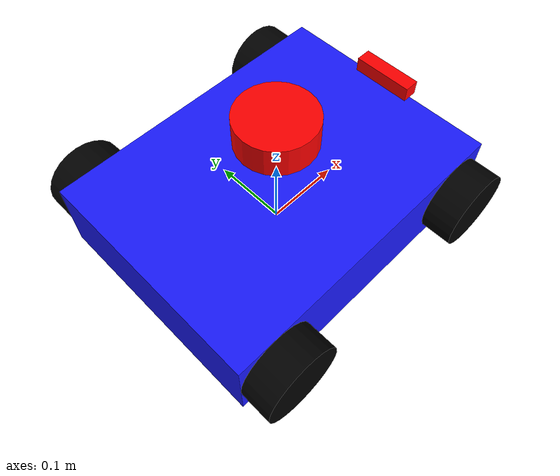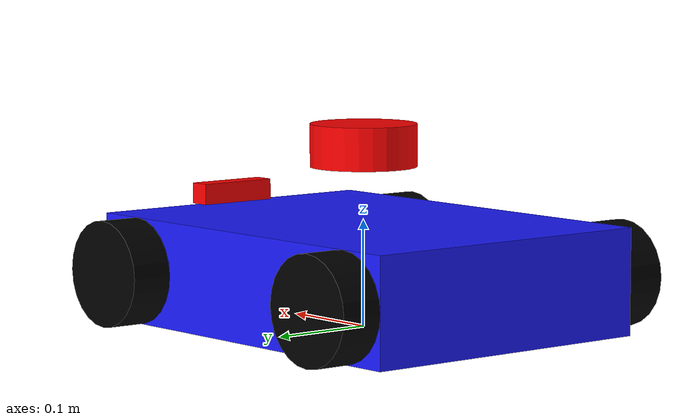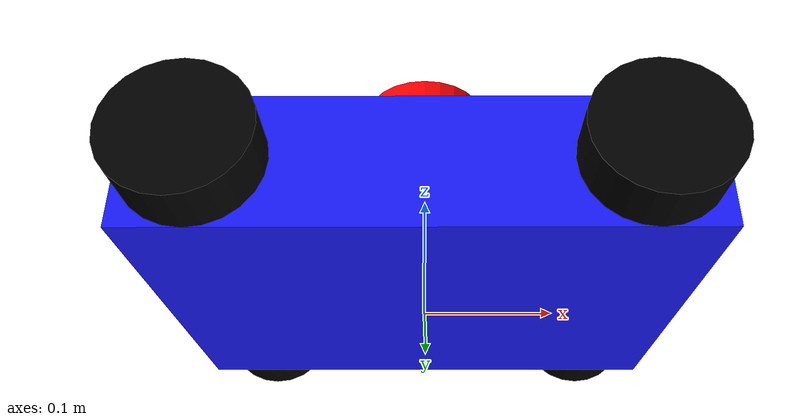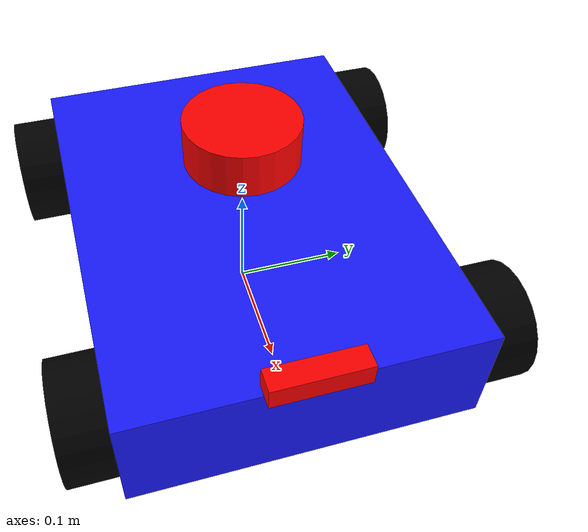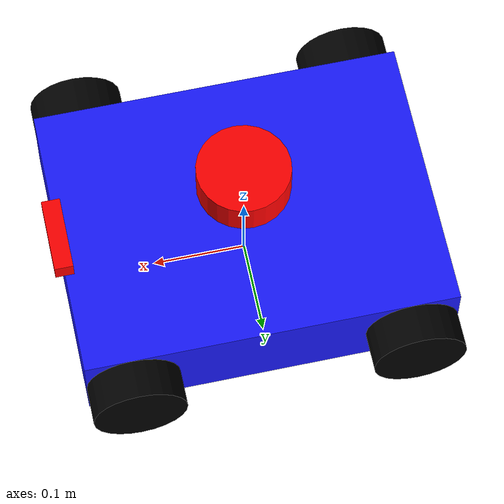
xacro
<?xml version="1.0"?>
<robot xmlns:xacro="http://www.ros.org/wiki/xacro" name="mi_robot_autonomo">

    <xacro:property name="radio_rueda" value="0.05"/>
    <xacro:property name="longitud_rueda" value="0.04"/>
    <xacro:property name="largo_chasis" value="0.4"/>
    <xacro:property name="ancho_chasis" value="0.3"/>
    <xacro:property name="alto_chasis" value="0.1"/>

    <xacro:property name="masa_chasis" value="1.0"/>
    <xacro:property name="masa_rueda" value="0.2"/>

    <xacro:macro name="inercia_caja" params="masa x y z">
        <inertial>
            <mass value="${masa}"/>
            <inertia ixx="${(1/12) * masa * (y*y + z*z)}" ixy="0.0" ixz="0.0"
                     iyy="${(1/12) * masa * (x*x + z*z)}" iyz="0.0"
                     izz="${(1/12) * masa * (x*x + y*y)}"/>
        </inertial>
    </xacro:macro>

    <xacro:macro name="inercia_cilindro" params="masa r h">
        <inertial>
            <mass value="${masa}"/>
            <inertia ixx="${(1/12) * masa * (3*r*r + h*h)}" ixy="0" ixz="0"
                     iyy="${(1/12) * masa * (3*r*r + h*h)}" iyz="0"
                     izz="${(1/2) * masa * (r*r)}"/>
        </inertial>
    </xacro:macro>

    <link name="base_footprint"/>

    <joint name="base_joint" type="fixed">
        <parent link="base_footprint"/>
        <child link="base_link"/>
        <origin xyz="0 0 ${radio_rueda}" rpy="0 0 0"/>
    </joint>

    <link name="base_link">
        <visual>
            <geometry>
                <box size="${largo_chasis} ${ancho_chasis} ${alto_chasis}"/>
            </geometry>
            <material name="azul">
                <color rgba="0.1 0.1 1 1"/> </material>
        </visual>

        <collision>
            <geometry>
                <box size="${largo_chasis} ${ancho_chasis} ${alto_chasis}"/>
            </geometry>
        </collision>

        <xacro:inercia_caja masa="${masa_chasis}" x="${largo_chasis}" y="${ancho_chasis}" z="${alto_chasis}"/>
    </link>

    <xacro:macro name="rueda" params="prefijo x_pos y_pos">
        <link name="${prefijo}_rueda">
            <visual>
                <geometry>
                    <cylinder radius="${radio_rueda}" length="${longitud_rueda}"/>
                </geometry>
                <material name="negro">
                    <color rgba="0 0 0 1"/>
                </material>
            </visual>

            <collision>
                <geometry>
                    <cylinder radius="${radio_rueda}" length="${longitud_rueda}"/>
                </geometry>
            </collision>

            <xacro:inercia_cilindro masa="${masa_rueda}" r="${radio_rueda}" h="${longitud_rueda}"/>
        </link>

        <joint name="${prefijo}_joint" type="continuous">
            <parent link="base_link"/>
            <child link="${prefijo}_rueda"/>
            <origin xyz="${x_pos} ${y_pos} 0" rpy="-1.5708 0 0"/>
            <axis xyz="0 0 1"/>
        </joint>
    </xacro:macro>

    <xacro:property name="wheel_offset_x" value="0.15"/>
    <xacro:property name="wheel_offset_y" value="0.17"/>

    <xacro:rueda prefijo="front_left"  x_pos="${wheel_offset_x}"  y_pos="${wheel_offset_y}"/>
    <xacro:rueda prefijo="front_right" x_pos="${wheel_offset_x}"  y_pos="-${wheel_offset_y}"/>
    <xacro:rueda prefijo="rear_left"   x_pos="-${wheel_offset_x}" y_pos="${wheel_offset_y}"/>
    <xacro:rueda prefijo="rear_right"  x_pos="-${wheel_offset_x}" y_pos="-${wheel_offset_y}"/>
<gazebo>
    <plugin name="diff_drive" filename="libgazebo_ros_diff_drive.so">
        <left_joint>front_left_joint</left_joint>
        <right_joint>front_right_joint</right_joint>

        <wheel_separation>0.35</wheel_separation>
        <wheel_diameter>0.1</wheel_diameter>

        <max_wheel_torque>200</max_wheel_torque>
        <max_wheel_acceleration>10.0</max_wheel_acceleration>

        <odometry_frame>odom</odometry_frame>
        <robot_base_frame>base_footprint</robot_base_frame>

        <publish_odom>true</publish_odom>
        <publish_odom_tf>true</publish_odom_tf>
        <publish_wheel_tf>true</publish_wheel_tf>
    </plugin>
</gazebo>
<gazebo reference="lidar_link">
        <sensor name="lidar" type="ray">
            <pose>0 0 0 0 0 0</pose>
            <visualize>true</visualize> <update_rate>10</update_rate>
            <ray>
                <scan>
                    <horizontal>
                        <samples>360</samples> <resolution>1</resolution>
                        <min_angle>-3.14</min_angle> <max_angle>3.14</max_angle>  </horizontal>
                </scan>
                <range>
                    <min>0.3</min>
                    <max>12</max> </range>
            </ray>
            <plugin name="laser_controller" filename="libgazebo_ros_ray_sensor.so">
                <ros>
                    <argument>~/out:=scan</argument>
                </ros>
                <output_type>sensor_msgs/LaserScan</output_type>
                <frame_name>lidar_link</frame_name>
            </plugin>
        </sensor>
    </gazebo>
<gazebo reference="camera_link">
        <sensor type="camera" name="camera_sensor">
            <update_rate>30.0</update_rate> <camera name="head">
                <horizontal_fov>1.3962634</horizontal_fov> <image>
                    <width>800</width>
                    <height>800</height>
                    <format>R8G8B8</format>
                </image>
                <clip>
                    <near>0.02</near>
                    <far>300</far>
                </clip>
            </camera>
            <plugin name="camera_controller" filename="libgazebo_ros_camera.so">
                <alwaysOn>true</alwaysOn>
                <updateRate>0.0</updateRate>
                <cameraName>camera</cameraName>
                <imageTopicName>image_raw</imageTopicName>
                <cameraInfoTopicName>camera_info</cameraInfoTopicName>
                <frameName>camera_link</frameName>
                <hackBaseline>0.07</hackBaseline>
            </plugin>
        </sensor>
    </gazebo>
<link name="lidar_link">
        <visual>
            <geometry>
                <cylinder radius="0.05" length="0.04"/>
            </geometry>
            <material name="rojo">
                <color rgba="1 0 0 1"/>
            </material>
        </visual>
        <collision>
            <geometry>
                <cylinder radius="0.05" length="0.04"/>
            </geometry>
        </collision>
        <xacro:inercia_cilindro masa="0.1" r="0.05" h="0.04"/>
    </link>

    <joint name="lidar_joint" type="fixed">
        <parent link="base_link"/>
        <child link="lidar_link"/>
        <origin xyz="0 0 ${alto_chasis + 0.02}" rpy="0 0 0"/>
    </joint>
<link name="camera_link">
        <visual>
            <geometry>
                <box size="0.02 0.08 0.02"/> </geometry>
            <material name="rojo"/>
        </visual>
        <collision>
            <geometry>
                <box size="0.02 0.08 0.02"/>
            </geometry>
        </collision>
        <xacro:inercia_caja masa="0.05" x="0.02" y="0.08" z="0.02"/>
    </link>

    <joint name="camera_joint" type="fixed">
        <parent link="base_link"/>
        <child link="camera_link"/>
        <origin xyz="${largo_chasis/2} 0 ${alto_chasis/2 + 0.01}" rpy="0 0 0"/>
    </joint>
 <gazebo reference="rear_left_rueda">
    <mu1>0.01</mu1>
    <mu2>0.01</mu2>
</gazebo>

<gazebo reference="rear_right_rueda">
    <mu1>0.01</mu1>
    <mu2>0.01</mu2>
</gazebo>
</robot>
